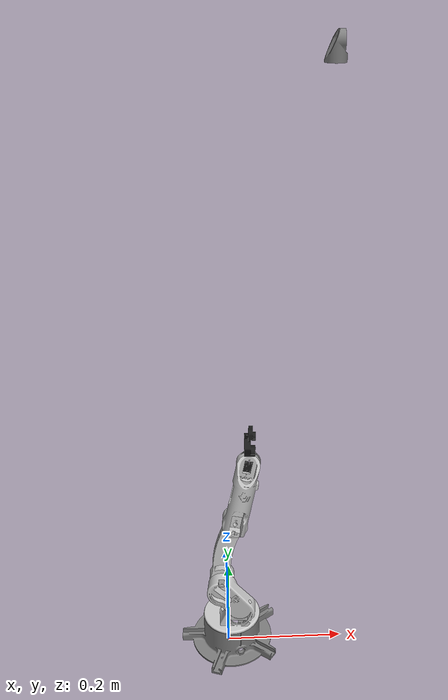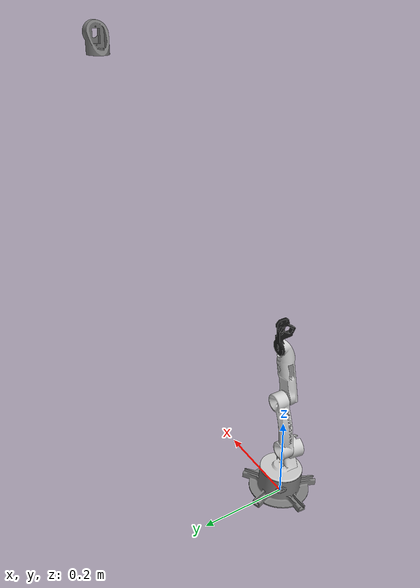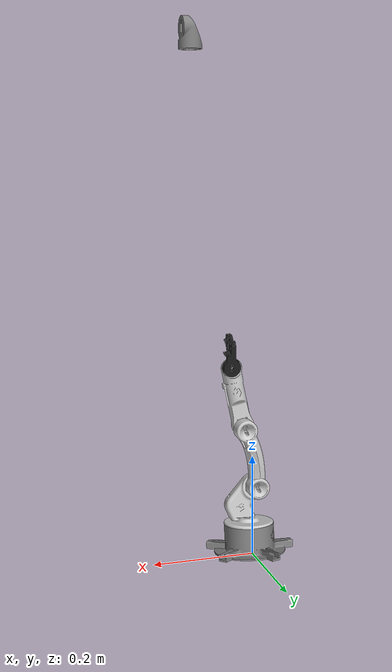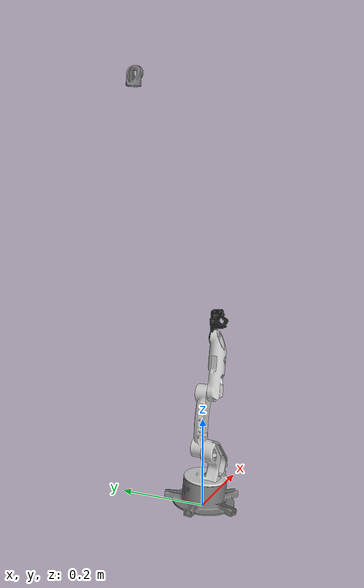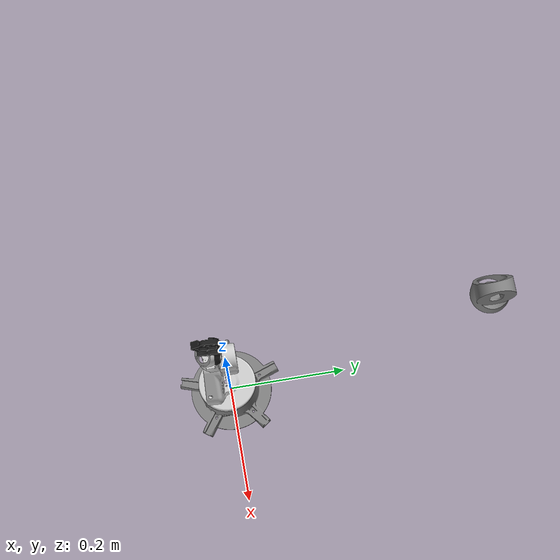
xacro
<?xml version="1.0"?>
<robot name="robotfun_meshes" xmlns:xacro="http://www.ros.org/wiki/xacro">

  <xacro:include filename="$(find robotfun_description)/urdf/common/materials.xacro"/>
  <xacro:property name="mesh" value="package://robotfun_description/meshes/arm"/>
  <xacro:property name="lo" value="-1.5708"/>
  <xacro:property name="hi" value="1.5708"/>

  <link name="world"/>
  <joint name="base_joint" type="fixed">
    <origin xyz="0 0 0" rpy="0 0 0"/><parent link="world"/><child link="base_link"/>
  </joint>

  <link name="base_link">
    <inertial><mass value="1.0"/>
      <inertia ixx="0.01" ixy="0" ixz="0" iyy="0.01" iyz="0" izz="0.01"/></inertial>
    <visual>
      <origin xyz="0 0 0" rpy="0 0 0"/>
      <geometry><mesh filename="${mesh}/base_link.stl" scale="0.001 0.001 0.001"/></geometry>
      <material name="grey"/>
    </visual>
  </link>

  <joint name="joint_1" type="revolute">
    <origin xyz="0 0 0.0617" rpy="0 0 0"/><parent link="base_link"/><child link="link_1"/>
    <axis xyz="0 0 1"/><limit lower="${lo}" upper="${hi}" effort="10.0" velocity="1.5"/>
  </joint>
  <link name="link_1">
    <visual>
      <origin xyz="0 0 -0.0617" rpy="0 0 0"/>
      <geometry><mesh filename="${mesh}/eslabon1_link.stl" scale="0.001 0.001 0.001"/></geometry>
      <material name="white_grey"/>
    </visual>
  </link>

  <joint name="joint_2" type="revolute">
    <origin xyz="0 0 0.0758" rpy="0 0 0"/><parent link="link_1"/><child link="link_2"/>
    <axis xyz="0 -1 0"/><limit lower="${lo}" upper="${hi}" effort="10.0" velocity="1.5"/>
  </joint>
  <link name="link_2">
    <visual>
      <origin xyz="0 0 -0.1375" rpy="0 0 0"/>
      <geometry><mesh filename="${mesh}/eslabon2_link.stl" scale="0.001 0.001 0.001"/></geometry>
      <material name="white_grey"/>
    </visual>
  </link>

  <joint name="joint_3" type="revolute">
    <origin xyz="0 0 0.1277" rpy="0 0 0"/><parent link="link_2"/><child link="link_3"/>
    <axis xyz="0 -1 0"/><limit lower="${lo}" upper="${hi}" effort="10.0" velocity="1.5"/>
  </joint>
  <link name="link_3">
    <visual>
      <origin xyz="0 0 -0.2652" rpy="0 0 0"/>
      <geometry><mesh filename="${mesh}/eslabon3_link.stl" scale="0.001 0.001 0.001"/></geometry>
      <material name="white_grey"/>
    </visual>
  </link>

  <joint name="joint_4" type="revolute">
    <origin xyz="0.038 0 0.1213" rpy="0 0 0"/><parent link="link_3"/><child link="link_4"/>
    <axis xyz="0 -1 0"/><limit lower="${lo}" upper="${hi}" effort="10.0" velocity="1.5"/>
  </joint>
  <!-- link_4 = eslabon4 (muñeca + gripper unidos: un solo eslabón) -->
  <link name="link_4">
    <visual>
      <origin xyz="-0.038 0 -0.3865" rpy="0 0 0"/>
      <geometry><mesh filename="${mesh}/eslabon4_link.stl" scale="0.001 0.001 0.001"/></geometry>
      <material name="black"/>
    </visual>
  </link>

  <!-- tool0 = TCP (punta del gripper, HAND=L5=0.090). Solo frame. -->
  <joint name="tool_fixed" type="fixed">
    <origin xyz="0 0 0.090" rpy="0 0 0"/><parent link="link_4"/><child link="tool0"/>
  </joint>
  <link name="tool0"/>

</robot>

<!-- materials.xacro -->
<!-- Materiales compartidos por los modelos primitivo y de meshes. -->
<robot xmlns:xacro="http://www.ros.org/wiki/xacro">
  <material name="black"><color rgba="0.10 0.10 0.10 1.0"/></material>
  <material name="grey"><color rgba="0.50 0.50 0.50 1.0"/></material>
  <material name="white_grey"><color rgba="0.80 0.80 0.80 1.0"/></material>
  <material name="red"><color rgba="0.85 0.20 0.20 1.0"/></material>
  <material name="green"><color rgba="0.20 0.70 0.30 1.0"/></material>
  <material name="blue"><color rgba="0.20 0.40 0.85 1.0"/></material>
</robot>
